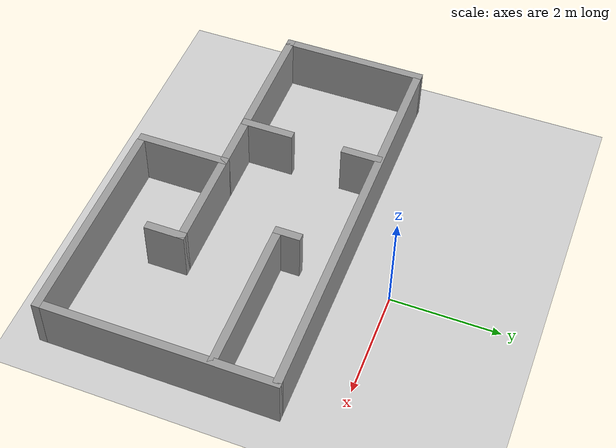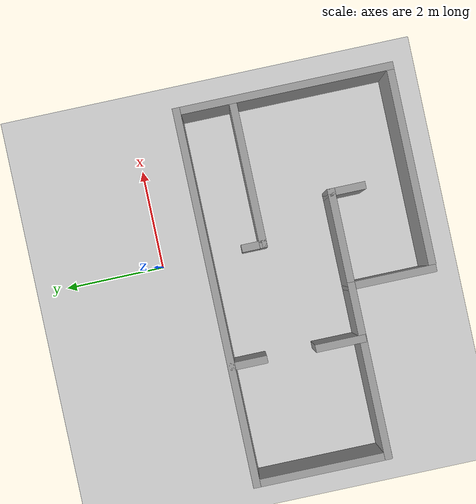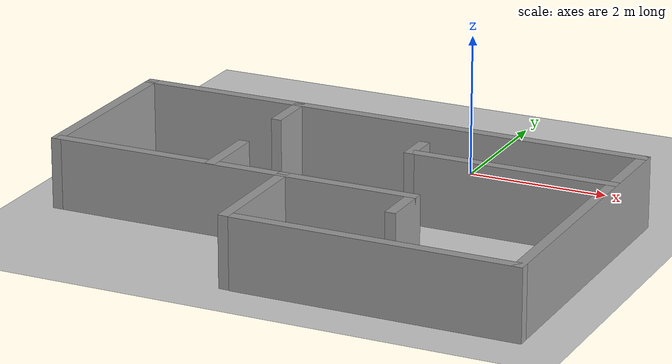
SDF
<sdf version="1.7">
 <world name="default">
  <light name="sun" type="directional">
   <pose>0 0 10 0 -0 0</pose>
   <diffuse>0.8 0.8 0.8 1</diffuse>
   <specular>0.2 0.2 0.2 1</specular>
   <attenuation>
    <range>1000</range>
    <constant>0.9</constant>
    <linear>0.01</linear>
    <quadratic>0.001</quadratic>
   </attenuation>
   <direction>-0.5 0.1 -0.9</direction>
   <spot><inner_angle>0</inner_angle><outer_angle>0</outer_angle><falloff>0</falloff></spot>
  </light>
  <model name="ground_plane">
   <static>1</static>
   <link name="link">
    <collision name="collision">
     <geometry><plane><normal>0 0 1</normal><size>100 100</size></plane></geometry>
     <surface>
      <contact><collide_bitmask>65535</collide_bitmask></contact>
      <friction><ode><mu>100</mu><mu2>50</mu2></ode></friction>
     </surface>
    </collision>
    <visual name="visual">
     <cast_shadows>0</cast_shadows>
     <geometry><plane><normal>0 0 1</normal><size>100 100</size></plane></geometry>
     <material>
      <script><uri>file://media/materials/scripts/gazebo.material</uri><name>Gazebo/Grey</name></script>
     </material>
    </visual>
   </link>
  </model>
  <gravity>0 0 -9.8</gravity>
  <magnetic_field>6e-06 2.3e-05 -4.2e-05</magnetic_field>
  <atmosphere type="adiabatic"/>
  <physics type="ode">
   <max_step_size>0.001</max_step_size>
   <real_time_factor>1</real_time_factor>
   <real_time_update_rate>1000</real_time_update_rate>
  </physics>
  <scene><ambient>0.4 0.4 0.4 1</ambient><background>0.7 0.7 0.7 1</background><shadows>1</shadows></scene>
  <audio><device>default</device></audio>
  <spherical_coordinates>
   <surface_model>EARTH_WGS84</surface_model>
   <latitude_deg>0</latitude_deg>
   <longitude_deg>0</longitude_deg>
   <elevation>0</elevation>
   <heading_deg>0</heading_deg>
  </spherical_coordinates>
  <model name="P1test">
   <pose>-0.805 -2.6225 0 0 -0 0</pose>
   <link name="Wall_0">
    <collision name="Wall_0_Collision">
     <geometry><box><size>7.5 0.15 1</size></box></geometry>
     <pose>0 0 0.5 0 -0 0</pose>
    </collision>
    <visual name="Wall_0_Visual">
     <pose>0 0 0.5 0 -0 0</pose>
     <geometry><box><size>7.5 0.15 1</size></box></geometry>
     <material>
      <script><uri>file://media/materials/scripts/gazebo.material</uri><name>Gazebo/Grey</name></script>
      <ambient>1 1 1 1</ambient>
     </material>
     <meta><layer>0</layer></meta>
    </visual>
    <pose>0 1.6625 0 0 -0 0</pose>
   </link>
   <link name="Wall_1">
    <collision name="Wall_1_Collision">
     <geometry><box><size>4.36 0.15 1</size></box></geometry>
     <pose>0 0 0.5 0 -0 0</pose>
    </collision>
    <visual name="Wall_1_Visual">
     <pose>0 0 0.5 0 -0 0</pose>
     <geometry><box><size>4.36 0.15 1</size></box></geometry>
     <material>
      <script><uri>file://media/materials/scripts/gazebo.material</uri><name>Gazebo/Grey</name></script>
      <ambient>1 1 1 1</ambient>
     </material>
     <meta><layer>0</layer></meta>
    </visual>
    <pose>3.675 -0.4425 0 0 -0 -1.5708</pose>
   </link>
   <link name="Wall_10">
    <collision name="Wall_10_Collision">
     <geometry><box><size>0.75 0.15 1</size></box></geometry>
     <pose>0 0 0.5 0 -0 0</pose>
    </collision>
    <visual name="Wall_10_Visual">
     <pose>0 0 0.5 0 -0 0</pose>
     <geometry><box><size>0.75 0.15 1</size></box></geometry>
     <material>
      <script><uri>file://media/materials/scripts/gazebo.material</uri><name>Gazebo/Grey</name></script>
      <ambient>1 1 1 1</ambient>
     </material>
     <meta><layer>0</layer></meta>
    </visual>
    <pose>1.525 -1.2375 0 0 -0 -1.5708</pose>
   </link>
   <link name="Wall_12">
    <collision name="Wall_12_Collision">
     <geometry><box><size>0.75 0.15 1</size></box></geometry>
     <pose>0 0 0.5 0 -0 0</pose>
    </collision>
    <visual name="Wall_12_Visual">
     <pose>0 0 0.5 0 -0 0</pose>
     <geometry><box><size>0.75 0.15 1</size></box></geometry>
     <material>
      <script><uri>file://media/materials/scripts/gazebo.material</uri><name>Gazebo/Grey</name></script>
      <ambient>1 1 1 1</ambient>
     </material>
     <meta><layer>0</layer></meta>
    </visual>
    <pose>-1.365 1.3225 0 0 -0 -1.5708</pose>
   </link>
   <link name="Wall_14">
    <collision name="Wall_14_Collision">
     <geometry><box><size>1 0.15 1</size></box></geometry>
     <pose>0 0 0.5 0 -0 0</pose>
    </collision>
    <visual name="Wall_14_Visual">
     <pose>0 0 0.5 0 -0 0</pose>
     <geometry><box><size>1 0.15 1</size></box></geometry>
     <material>
      <script><uri>file://media/materials/scripts/gazebo.material</uri><name>Gazebo/Grey</name></script>
      <ambient>1 1 1 1</ambient>
     </material>
     <meta><layer>0</layer></meta>
    </visual>
    <pose>-1.365 -0.5025 0 0 -0 -1.5708</pose>
   </link>
   <link name="Wall_16">
    <collision name="Wall_16_Collision">
     <geometry><box><size>3 0.15 1</size></box></geometry>
     <pose>0 0 0.5 0 -0 0</pose>
    </collision>
    <visual name="Wall_16_Visual">
     <pose>0 0 0.5 0 -0 0</pose>
     <geometry><box><size>3 0.15 1</size></box></geometry>
     <material>
      <script><uri>file://media/materials/scripts/gazebo.material</uri><name>Gazebo/Grey</name></script>
      <ambient>1 1 1 1</ambient>
     </material>
     <meta><layer>0</layer></meta>
    </visual>
    <pose>2.25 0.5625 0 0 -0 3.14159</pose>
   </link>
   <link name="Wall_17">
    <collision name="Wall_17_Collision">
     <geometry><box><size>0.5 0.15 1</size></box></geometry>
     <pose>0 0 0.5 0 -0 0</pose>
    </collision>
    <visual name="Wall_17_Visual">
     <pose>0 0 0.5 0 -0 0</pose>
     <geometry><box><size>0.5 0.15 1</size></box></geometry>
     <material>
      <script><uri>file://media/materials/scripts/gazebo.material</uri><name>Gazebo/Grey</name></script>
      <ambient>1 1 1 1</ambient>
     </material>
     <meta><layer>0</layer></meta>
    </visual>
    <pose>0.825 0.7375 0 0 -0 1.5708</pose>
   </link>
   <link name="Wall_2">
    <collision name="Wall_2_Collision">
     <geometry><box><size>4 0.15 1</size></box></geometry>
     <pose>0 0 0.5 0 -0 0</pose>
    </collision>
    <visual name="Wall_2_Visual">
     <pose>0 0 0.5 0 -0 0</pose>
     <geometry><box><size>4 0.15 1</size></box></geometry>
     <material>
      <script><uri>file://media/materials/scripts/gazebo.material</uri><name>Gazebo/Grey</name></script>
      <ambient>1 1 1 1</ambient>
     </material>
     <meta><layer>0</layer></meta>
    </visual>
    <pose>1.75 -2.5475 0 0 -0 3.14159</pose>
   </link>
   <link name="Wall_4">
    <collision name="Wall_4_Collision">
     <geometry><box><size>3.5 0.15 1</size></box></geometry>
     <pose>0 0 0.5 0 -0 0</pose>
    </collision>
    <visual name="Wall_4_Visual">
     <pose>0 0 0.5 0 -0 0</pose>
     <geometry><box><size>3.5 0.15 1</size></box></geometry>
     <material>
      <script><uri>file://media/materials/scripts/gazebo.material</uri><name>Gazebo/Grey</name></script>
      <ambient>1 1 1 1</ambient>
     </material>
     <meta><layer>0</layer></meta>
    </visual>
    <pose>-2 -0.9375 0 0 -0 3.14159</pose>
   </link>
   <link name="Wall_5">
    <collision name="Wall_5_Collision">
     <geometry><box><size>2.75 0.15 1</size></box></geometry>
     <pose>0 0 0.5 0 -0 0</pose>
    </collision>
    <visual name="Wall_5_Visual">
     <pose>0 0 0.5 0 -0 0</pose>
     <geometry><box><size>2.75 0.15 1</size></box></geometry>
     <material>
      <script><uri>file://media/materials/scripts/gazebo.material</uri><name>Gazebo/Grey</name></script>
      <ambient>1 1 1 1</ambient>
     </material>
     <meta><layer>0</layer></meta>
    </visual>
    <pose>-3.675 0.3625 0 0 -0 1.5708</pose>
   </link>
   <link name="Wall_7">
    <collision name="Wall_7_Collision">
     <geometry><box><size>1.75 0.15 1</size></box></geometry>
     <pose>0 0 0.5 0 -0 0</pose>
    </collision>
    <visual name="Wall_7_Visual">
     <pose>0 0 0.5 0 -0 0</pose>
     <geometry><box><size>1.75 0.15 1</size></box></geometry>
     <material>
      <script><uri>file://media/materials/scripts/gazebo.material</uri><name>Gazebo/Grey</name></script>
      <ambient>1 1 1 1</ambient>
     </material>
     <meta><layer>0</layer></meta>
    </visual>
    <pose>-0.325 -1.7375 0 0 -0 -1.5708</pose>
   </link>
   <link name="Wall_9">
    <collision name="Wall_9_Collision">
     <geometry><box><size>2 0.15 1</size></box></geometry>
     <pose>0 0 0.5 0 -0 0</pose>
    </collision>
    <visual name="Wall_9_Visual">
     <pose>0 0 0.5 0 -0 0</pose>
     <geometry><box><size>2 0.15 1</size></box></geometry>
     <material>
      <script><uri>file://media/materials/scripts/gazebo.material</uri><name>Gazebo/Grey</name></script>
      <ambient>1 1 1 1</ambient>
     </material>
     <meta><layer>0</layer></meta>
    </visual>
    <pose>0.6 -0.9375 0 0 -0 0</pose>
   </link>
   <static>1</static>
  </model>
 </world>
</sdf>
